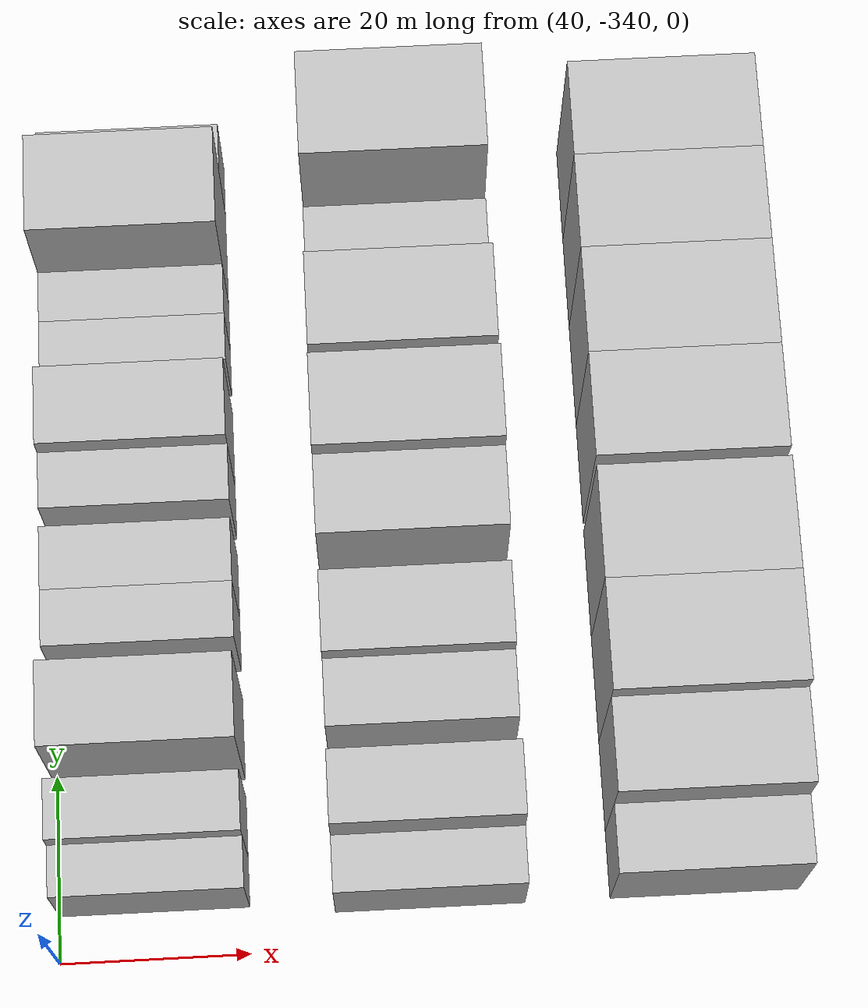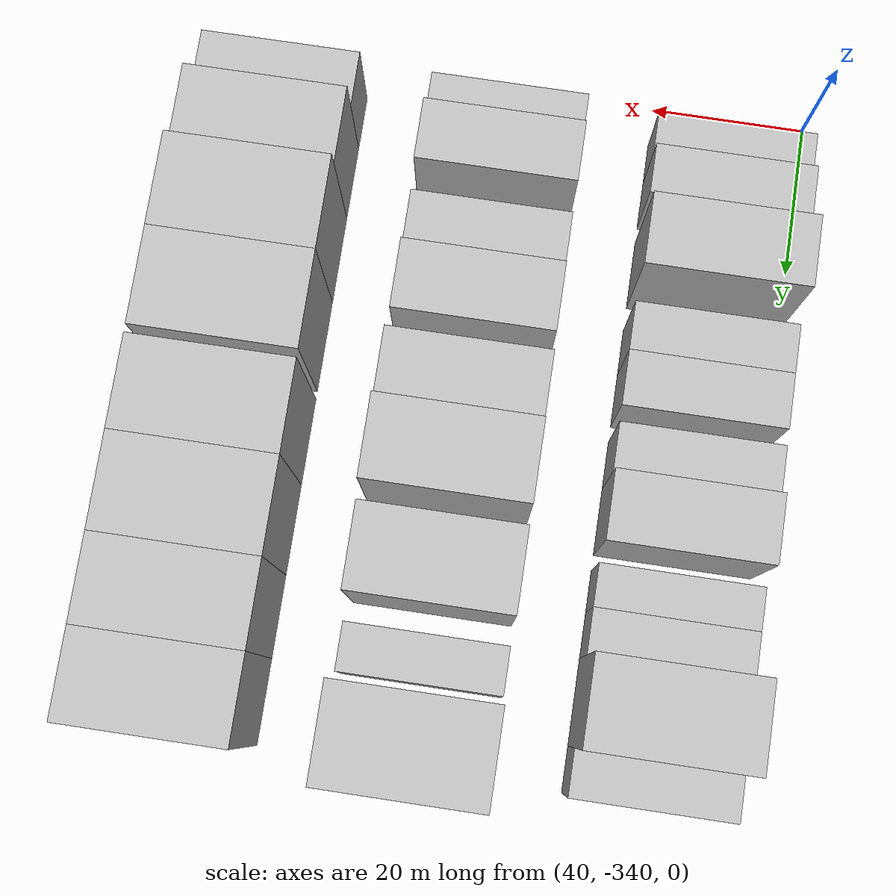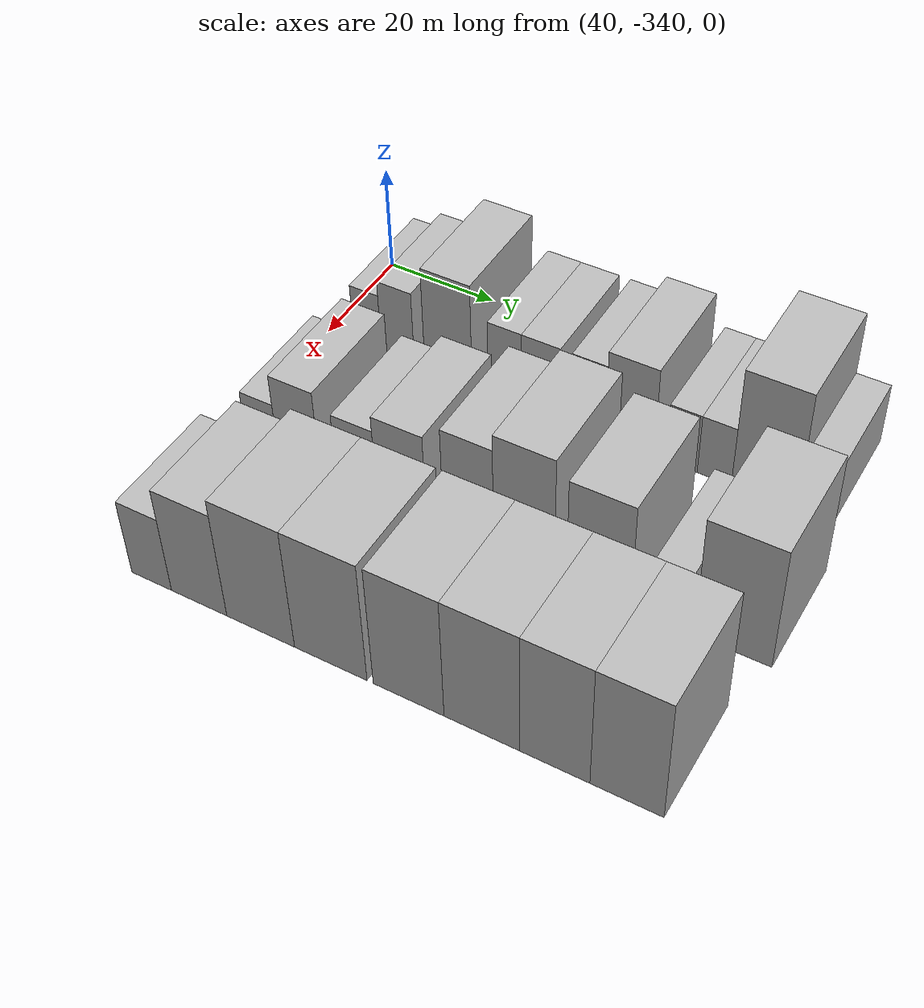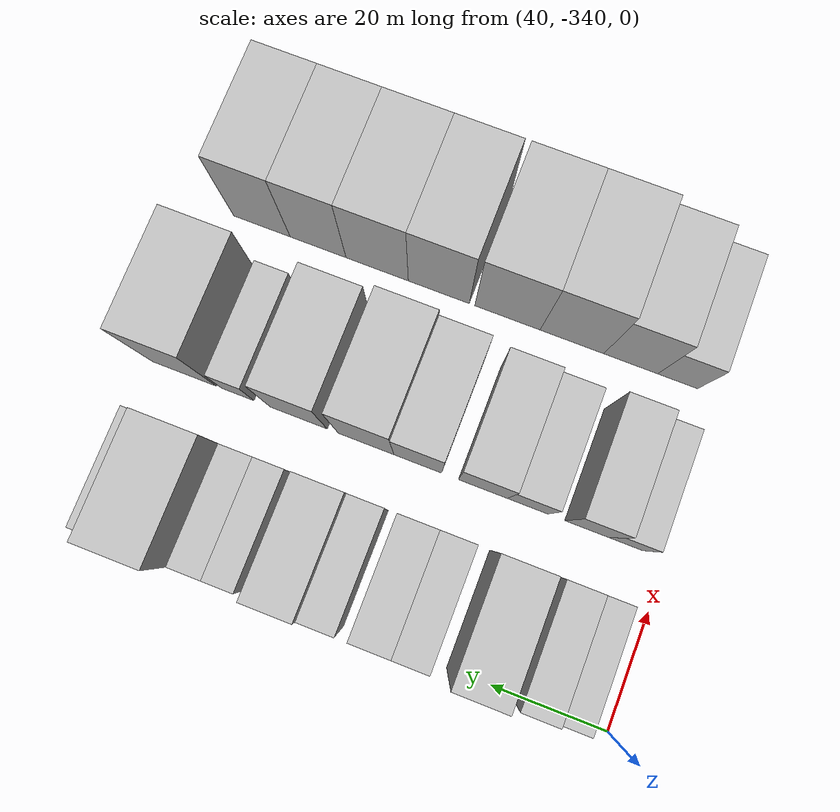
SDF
<sdf version="1.6">
 <world name="default">
  <model name="building_1">
   <static>1</static>
   <pose>50.0000 -332.3124 0 0.000000 0.000000 0.000000</pose>
   <link name="link">
    <pose>0 0 6.00 0 0 0</pose>
    <collision name="collision"><geometry><box><size>20.0000 5.3752 12.0000</size></box></geometry></collision>
    <visual name="visual">
     <cast_shadows>0</cast_shadows>
     <geometry><box><size>20.0000 5.3752 12.0000</size></box></geometry>
     <material>
      <script>
       <uri>model://HANNAS_wall/materials/scripts</uri>
       <uri>model://HANNAS_wall/materials/textures</uri>
       <name>vrc/HANNAS_wall</name>
      </script>
     </material>
    </visual>
   </link>
  </model>
  <model name="building_2">
   <static>1</static>
   <pose>50.0000 -326.4611 0 0.000000 0.000000 0.000000</pose>
   <link name="link">
    <pose>0 0 7.50 0 0 0</pose>
    <collision name="collision"><geometry><box><size>20.0000 6.3274 15.0000</size></box></geometry></collision>
    <visual name="visual">
     <cast_shadows>0</cast_shadows>
     <geometry><box><size>20.0000 6.3274 15.0000</size></box></geometry>
     <material>
      <script>
       <uri>model://HANNAS_wall/materials/scripts</uri>
       <uri>model://HANNAS_wall/materials/textures</uri>
       <name>vrc/HANNAS_wall</name>
      </script>
     </material>
    </visual>
   </link>
  </model>
  <model name="building_3">
   <static>1</static>
   <pose>50.0000 -316.8551 0 0.000000 0.000000 0.000000</pose>
   <link name="link">
    <pose>0 0 10.50 0 0 0</pose>
    <collision name="collision"><geometry><box><size>20.0000 8.8847 21.0000</size></box></geometry></collision>
    <visual name="visual">
     <cast_shadows>0</cast_shadows>
     <geometry><box><size>20.0000 8.8847 21.0000</size></box></geometry>
     <material>
      <script>
       <uri>model://HANNAS_wall/materials/scripts</uri>
       <uri>model://HANNAS_wall/materials/textures</uri>
       <name>vrc/HANNAS_wall</name>
      </script>
     </material>
    </visual>
   </link>
  </model>
  <model name="building_4">
   <static>1</static>
   <pose>50.0000 -306.3865 0 0.000000 0.000000 0.000000</pose>
   <link name="link">
    <pose>0 0 7.50 0 0 0</pose>
    <collision name="collision"><geometry><box><size>20.0000 6.0524 15.0000</size></box></geometry></collision>
    <visual name="visual">
     <cast_shadows>0</cast_shadows>
     <geometry><box><size>20.0000 6.0524 15.0000</size></box></geometry>
     <material>
      <script>
       <uri>model://HANNAS_wall/materials/scripts</uri>
       <uri>model://HANNAS_wall/materials/textures</uri>
       <name>vrc/HANNAS_wall</name>
      </script>
     </material>
    </visual>
   </link>
  </model>
  <model name="building_5">
   <static>1</static>
   <pose>50.0000 -299.9260 0 0.000000 0.000000 0.000000</pose>
   <link name="link">
    <pose>0 0 7.50 0 0 0</pose>
    <collision name="collision"><geometry><box><size>20.0000 6.8686 15.0000</size></box></geometry></collision>
    <visual name="visual">
     <cast_shadows>0</cast_shadows>
     <geometry><box><size>20.0000 6.8686 15.0000</size></box></geometry>
     <material>
      <script>
       <uri>model://HANNAS_wall/materials/scripts</uri>
       <uri>model://HANNAS_wall/materials/textures</uri>
       <name>vrc/HANNAS_wall</name>
      </script>
     </material>
    </visual>
   </link>
  </model>
  <model name="building_6">
   <static>1</static>
   <pose>50.0000 -291.4294 0 0.000000 0.000000 0.000000</pose>
   <link name="link">
    <pose>0 0 7.50 0 0 0</pose>
    <collision name="collision"><geometry><box><size>20.0000 6.1247 15.0000</size></box></geometry></collision>
    <visual name="visual">
     <cast_shadows>0</cast_shadows>
     <geometry><box><size>20.0000 6.1247 15.0000</size></box></geometry>
     <material>
      <script>
       <uri>model://HANNAS_wall/materials/scripts</uri>
       <uri>model://HANNAS_wall/materials/textures</uri>
       <name>vrc/HANNAS_wall</name>
      </script>
     </material>
    </visual>
   </link>
  </model>
  <model name="building_7">
   <static>1</static>
   <pose>50.0000 -284.0968 0 0.000000 0.000000 0.000000</pose>
   <link name="link">
    <pose>0 0 9.00 0 0 0</pose>
    <collision name="collision"><geometry><box><size>20.0000 8.5404 18.0000</size></box></geometry></collision>
    <visual name="visual">
     <cast_shadows>0</cast_shadows>
     <geometry><box><size>20.0000 8.5404 18.0000</size></box></geometry>
     <material>
      <script>
       <uri>model://HANNAS_wall/materials/scripts</uri>
       <uri>model://HANNAS_wall/materials/textures</uri>
       <name>vrc/HANNAS_wall</name>
      </script>
     </material>
    </visual>
   </link>
  </model>
  <model name="building_8">
   <static>1</static>
   <pose>50.0000 -275.1742 0 0.000000 0.000000 0.000000</pose>
   <link name="link">
    <pose>0 0 6.00 0 0 0</pose>
    <collision name="collision"><geometry><box><size>20.0000 5.3046 12.0000</size></box></geometry></collision>
    <visual name="visual">
     <cast_shadows>0</cast_shadows>
     <geometry><box><size>20.0000 5.3046 12.0000</size></box></geometry>
     <material>
      <script>
       <uri>model://HANNAS_wall/materials/scripts</uri>
       <uri>model://HANNAS_wall/materials/textures</uri>
       <name>vrc/HANNAS_wall</name>
      </script>
     </material>
    </visual>
   </link>
  </model>
  <model name="building_9">
   <static>1</static>
   <pose>50.0000 -269.6709 0 0.000000 0.000000 0.000000</pose>
   <link name="link">
    <pose>0 0 6.00 0 0 0</pose>
    <collision name="collision"><geometry><box><size>20.0000 5.7021 12.0000</size></box></geometry></collision>
    <visual name="visual">
     <cast_shadows>0</cast_shadows>
     <geometry><box><size>20.0000 5.7021 12.0000</size></box></geometry>
     <material>
      <script>
       <uri>model://HANNAS_wall/materials/scripts</uri>
       <uri>model://HANNAS_wall/materials/textures</uri>
       <name>vrc/HANNAS_wall</name>
      </script>
     </material>
    </visual>
   </link>
  </model>
  <model name="building_10">
   <static>1</static>
   <pose>50.0000 -261.4165 0 0.000000 0.000000 0.000000</pose>
   <link name="link">
    <pose>0 0 12.00 0 0 0</pose>
    <collision name="collision"><geometry><box><size>20.0000 10.8067 24.0000</size></box></geometry></collision>
    <visual name="visual">
     <cast_shadows>0</cast_shadows>
     <geometry><box><size>20.0000 10.8067 24.0000</size></box></geometry>
     <material>
      <script>
       <uri>model://HANNAS_wall/materials/scripts</uri>
       <uri>model://HANNAS_wall/materials/textures</uri>
       <name>vrc/HANNAS_wall</name>
      </script>
     </material>
    </visual>
   </link>
  </model>
  <model name="building_11">
   <static>1</static>
   <pose>50.0000 -253.1574 0 0.000000 0.000000 0.000000</pose>
   <link name="link">
    <pose>0 0 6.00 0 0 0</pose>
    <collision name="collision"><geometry><box><size>20.0000 5.7115 12.0000</size></box></geometry></collision>
    <visual name="visual">
     <cast_shadows>0</cast_shadows>
     <geometry><box><size>20.0000 5.7115 12.0000</size></box></geometry>
     <material>
      <script>
       <uri>model://HANNAS_wall/materials/scripts</uri>
       <uri>model://HANNAS_wall/materials/textures</uri>
       <name>vrc/HANNAS_wall</name>
      </script>
     </material>
    </visual>
   </link>
  </model>
  <model name="building_75">
   <static>1</static>
   <pose>79.0000 -333.0246 0 0.000000 0.000000 0.000000</pose>
   <link name="link">
    <pose>0 0 6.00 0 0 0</pose>
    <collision name="collision"><geometry><box><size>20.0000 5.9508 12.0000</size></box></geometry></collision>
    <visual name="visual">
     <cast_shadows>0</cast_shadows>
     <geometry><box><size>20.0000 5.9508 12.0000</size></box></geometry>
     <material>
      <script>
       <uri>model://HANNAS_wall/materials/scripts</uri>
       <uri>model://HANNAS_wall/materials/textures</uri>
       <name>vrc/HANNAS_wall</name>
      </script>
     </material>
    </visual>
   </link>
  </model>
  <model name="building_76">
   <static>1</static>
   <pose>79.0000 -326.1938 0 0.000000 0.000000 0.000000</pose>
   <link name="link">
    <pose>0 0 9.00 0 0 0</pose>
    <collision name="collision"><geometry><box><size>20.0000 7.7109 18.0000</size></box></geometry></collision>
    <visual name="visual">
     <cast_shadows>0</cast_shadows>
     <geometry><box><size>20.0000 7.7109 18.0000</size></box></geometry>
     <material>
      <script>
       <uri>model://HANNAS_wall/materials/scripts</uri>
       <uri>model://HANNAS_wall/materials/textures</uri>
       <name>vrc/HANNAS_wall</name>
      </script>
     </material>
    </visual>
   </link>
  </model>
  <model name="building_77">
   <static>1</static>
   <pose>79.0000 -315.7616 0 0.000000 0.000000 0.000000</pose>
   <link name="link">
    <pose>0 0 7.50 0 0 0</pose>
    <collision name="collision"><geometry><box><size>20.0000 7.1535 15.0000</size></box></geometry></collision>
    <visual name="visual">
     <cast_shadows>0</cast_shadows>
     <geometry><box><size>20.0000 7.1535 15.0000</size></box></geometry>
     <material>
      <script>
       <uri>model://HANNAS_wall/materials/scripts</uri>
       <uri>model://HANNAS_wall/materials/textures</uri>
       <name>vrc/HANNAS_wall</name>
      </script>
     </material>
    </visual>
   </link>
  </model>
  <model name="building_78">
   <static>1</static>
   <pose>79.0000 -307.8486 0 0.000000 0.000000 0.000000</pose>
   <link name="link">
    <pose>0 0 9.00 0 0 0</pose>
    <collision name="collision"><geometry><box><size>20.0000 8.6723 18.0000</size></box></geometry></collision>
    <visual name="visual">
     <cast_shadows>0</cast_shadows>
     <geometry><box><size>20.0000 8.6723 18.0000</size></box></geometry>
     <material>
      <script>
       <uri>model://HANNAS_wall/materials/scripts</uri>
       <uri>model://HANNAS_wall/materials/textures</uri>
       <name>vrc/HANNAS_wall</name>
      </script>
     </material>
    </visual>
   </link>
  </model>
  <model name="building_79">
   <static>1</static>
   <pose>79.0000 -296.2455 0 0.000000 0.000000 0.000000</pose>
   <link name="link">
    <pose>0 0 10.50 0 0 0</pose>
    <collision name="collision"><geometry><box><size>20.0000 8.5339 21.0000</size></box></geometry></collision>
    <visual name="visual">
     <cast_shadows>0</cast_shadows>
     <geometry><box><size>20.0000 8.5339 21.0000</size></box></geometry>
     <material>
      <script>
       <uri>model://HANNAS_wall/materials/scripts</uri>
       <uri>model://HANNAS_wall/materials/textures</uri>
       <name>vrc/HANNAS_wall</name>
      </script>
     </material>
    </visual>
   </link>
  </model>
  <model name="building_80">
   <static>1</static>
   <pose>79.0000 -286.9466 0 0.000000 0.000000 0.000000</pose>
   <link name="link">
    <pose>0 0 12.00 0 0 0</pose>
    <collision name="collision"><geometry><box><size>20.0000 10.0640 24.0000</size></box></geometry></collision>
    <visual name="visual">
     <cast_shadows>0</cast_shadows>
     <geometry><box><size>20.0000 10.0640 24.0000</size></box></geometry>
     <material>
      <script>
       <uri>model://HANNAS_wall/materials/scripts</uri>
       <uri>model://HANNAS_wall/materials/textures</uri>
       <name>vrc/HANNAS_wall</name>
      </script>
     </material>
    </visual>
   </link>
  </model>
  <model name="building_81">
   <static>1</static>
   <pose>79.0000 -274.7111 0 0.000000 0.000000 0.000000</pose>
   <link name="link">
    <pose>0 0 10.50 0 0 0</pose>
    <collision name="collision"><geometry><box><size>20.0000 10.4068 21.0000</size></box></geometry></collision>
    <visual name="visual">
     <cast_shadows>0</cast_shadows>
     <geometry><box><size>20.0000 10.4068 21.0000</size></box></geometry>
     <material>
      <script>
       <uri>model://HANNAS_wall/materials/scripts</uri>
       <uri>model://HANNAS_wall/materials/textures</uri>
       <name>vrc/HANNAS_wall</name>
      </script>
     </material>
    </visual>
   </link>
  </model>
  <model name="building_82">
   <static>1</static>
   <pose>79.0000 -263.5470 0 0.000000 0.000000 0.000000</pose>
   <link name="link">
    <pose>0 0 6.00 0 0 0</pose>
    <collision name="collision"><geometry><box><size>20.0000 5.9213 12.0000</size></box></geometry></collision>
    <visual name="visual">
     <cast_shadows>0</cast_shadows>
     <geometry><box><size>20.0000 5.9213 12.0000</size></box></geometry>
     <material>
      <script>
       <uri>model://HANNAS_wall/materials/scripts</uri>
       <uri>model://HANNAS_wall/materials/textures</uri>
       <name>vrc/HANNAS_wall</name>
      </script>
     </material>
    </visual>
   </link>
  </model>
  <model name="building_83">
   <static>1</static>
   <pose>79.0000 -253.6723 0 0.000000 0.000000 0.000000</pose>
   <link name="link">
    <pose>0 0 12.00 0 0 0</pose>
    <collision name="collision"><geometry><box><size>20.0000 11.8282 24.0000</size></box></geometry></collision>
    <visual name="visual">
     <cast_shadows>0</cast_shadows>
     <geometry><box><size>20.0000 11.8282 24.0000</size></box></geometry>
     <material>
      <script>
       <uri>model://HANNAS_wall/materials/scripts</uri>
       <uri>model://HANNAS_wall/materials/textures</uri>
       <name>vrc/HANNAS_wall</name>
      </script>
     </material>
    </visual>
   </link>
  </model>
  <model name="building_148">
   <static>1</static>
   <pose>108.0000 -332.4351 0 0.000000 0.000000 0.000000</pose>
   <link name="link">
    <pose>0 0 7.50 0 0 0</pose>
    <collision name="collision"><geometry><box><size>20.0000 7.1298 15.0000</size></box></geometry></collision>
    <visual name="visual">
     <cast_shadows>0</cast_shadows>
     <geometry><box><size>20.0000 7.1298 15.0000</size></box></geometry>
     <material>
      <script>
       <uri>model://HANNAS_wall/materials/scripts</uri>
       <uri>model://HANNAS_wall/materials/textures</uri>
       <name>vrc/HANNAS_wall</name>
      </script>
     </material>
    </visual>
   </link>
  </model>
  <model name="building_149">
   <static>1</static>
   <pose>108.0000 -324.0013 0 0.000000 0.000000 0.000000</pose>
   <link name="link">
    <pose>0 0 10.50 0 0 0</pose>
    <collision name="collision"><geometry><box><size>20.0000 9.7379 21.0000</size></box></geometry></collision>
    <visual name="visual">
     <cast_shadows>0</cast_shadows>
     <geometry><box><size>20.0000 9.7379 21.0000</size></box></geometry>
     <material>
      <script>
       <uri>model://HANNAS_wall/materials/scripts</uri>
       <uri>model://HANNAS_wall/materials/textures</uri>
       <name>vrc/HANNAS_wall</name>
      </script>
     </material>
    </visual>
   </link>
  </model>
  <model name="building_150">
   <static>1</static>
   <pose>108.0000 -313.3439 0 0.000000 0.000000 0.000000</pose>
   <link name="link">
    <pose>0 0 12.00 0 0 0</pose>
    <collision name="collision"><geometry><box><size>20.0000 11.5768 24.0000</size></box></geometry></collision>
    <visual name="visual">
     <cast_shadows>0</cast_shadows>
     <geometry><box><size>20.0000 11.5768 24.0000</size></box></geometry>
     <material>
      <script>
       <uri>model://HANNAS_wall/materials/scripts</uri>
       <uri>model://HANNAS_wall/materials/textures</uri>
       <name>vrc/HANNAS_wall</name>
      </script>
     </material>
    </visual>
   </link>
  </model>
  <model name="building_151">
   <static>1</static>
   <pose>108.0000 -301.5636 0 0.000000 0.000000 0.000000</pose>
   <link name="link">
    <pose>0 0 12.00 0 0 0</pose>
    <collision name="collision"><geometry><box><size>20.0000 11.9838 24.0000</size></box></geometry></collision>
    <visual name="visual">
     <cast_shadows>0</cast_shadows>
     <geometry><box><size>20.0000 11.9838 24.0000</size></box></geometry>
     <material>
      <script>
       <uri>model://HANNAS_wall/materials/scripts</uri>
       <uri>model://HANNAS_wall/materials/textures</uri>
       <name>vrc/HANNAS_wall</name>
      </script>
     </material>
    </visual>
   </link>
  </model>
  <model name="building_152">
   <static>1</static>
   <pose>108.0000 -288.9253 0 0.000000 0.000000 0.000000</pose>
   <link name="link">
    <pose>0 0 12.00 0 0 0</pose>
    <collision name="collision"><geometry><box><size>20.0000 11.2927 24.0000</size></box></geometry></collision>
    <visual name="visual">
     <cast_shadows>0</cast_shadows>
     <geometry><box><size>20.0000 11.2927 24.0000</size></box></geometry>
     <material>
      <script>
       <uri>model://HANNAS_wall/materials/scripts</uri>
       <uri>model://HANNAS_wall/materials/textures</uri>
       <name>vrc/HANNAS_wall</name>
      </script>
     </material>
    </visual>
   </link>
  </model>
  <model name="building_153">
   <static>1</static>
   <pose>108.0000 -277.4660 0 0.000000 0.000000 0.000000</pose>
   <link name="link">
    <pose>0 0 12.00 0 0 0</pose>
    <collision name="collision"><geometry><box><size>20.0000 11.6260 24.0000</size></box></geometry></collision>
    <visual name="visual">
     <cast_shadows>0</cast_shadows>
     <geometry><box><size>20.0000 11.6260 24.0000</size></box></geometry>
     <material>
      <script>
       <uri>model://HANNAS_wall/materials/scripts</uri>
       <uri>model://HANNAS_wall/materials/textures</uri>
       <name>vrc/HANNAS_wall</name>
      </script>
     </material>
    </visual>
   </link>
  </model>
  <model name="building_154">
   <static>1</static>
   <pose>108.0000 -266.3952 0 0.000000 0.000000 0.000000</pose>
   <link name="link">
    <pose>0 0 12.00 0 0 0</pose>
    <collision name="collision"><geometry><box><size>20.0000 10.5155 24.0000</size></box></geometry></collision>
    <visual name="visual">
     <cast_shadows>0</cast_shadows>
     <geometry><box><size>20.0000 10.5155 24.0000</size></box></geometry>
     <material>
      <script>
       <uri>model://HANNAS_wall/materials/scripts</uri>
       <uri>model://HANNAS_wall/materials/textures</uri>
       <name>vrc/HANNAS_wall</name>
      </script>
     </material>
    </visual>
   </link>
  </model>
  <model name="building_155">
   <static>1</static>
   <pose>108.0000 -255.7702 0 0.000000 0.000000 0.000000</pose>
   <link name="link">
    <pose>0 0 12.00 0 0 0</pose>
    <collision name="collision"><geometry><box><size>20.0000 10.7346 24.0000</size></box></geometry></collision>
    <visual name="visual">
     <cast_shadows>0</cast_shadows>
     <geometry><box><size>20.0000 10.7346 24.0000</size></box></geometry>
     <material>
      <script>
       <uri>model://HANNAS_wall/materials/scripts</uri>
       <uri>model://HANNAS_wall/materials/textures</uri>
       <name>vrc/HANNAS_wall</name>
      </script>
     </material>
    </visual>
   </link>
  </model>
 </world>
</sdf>
